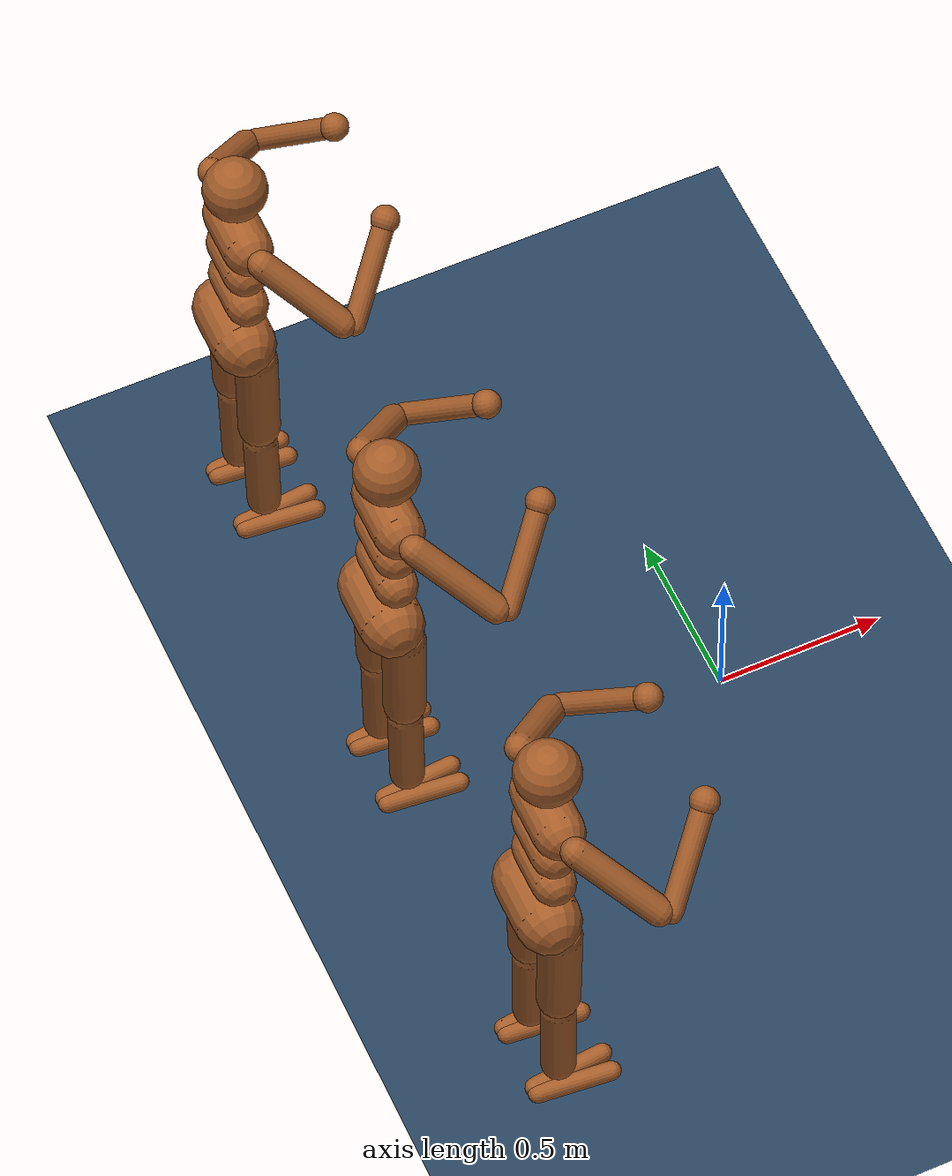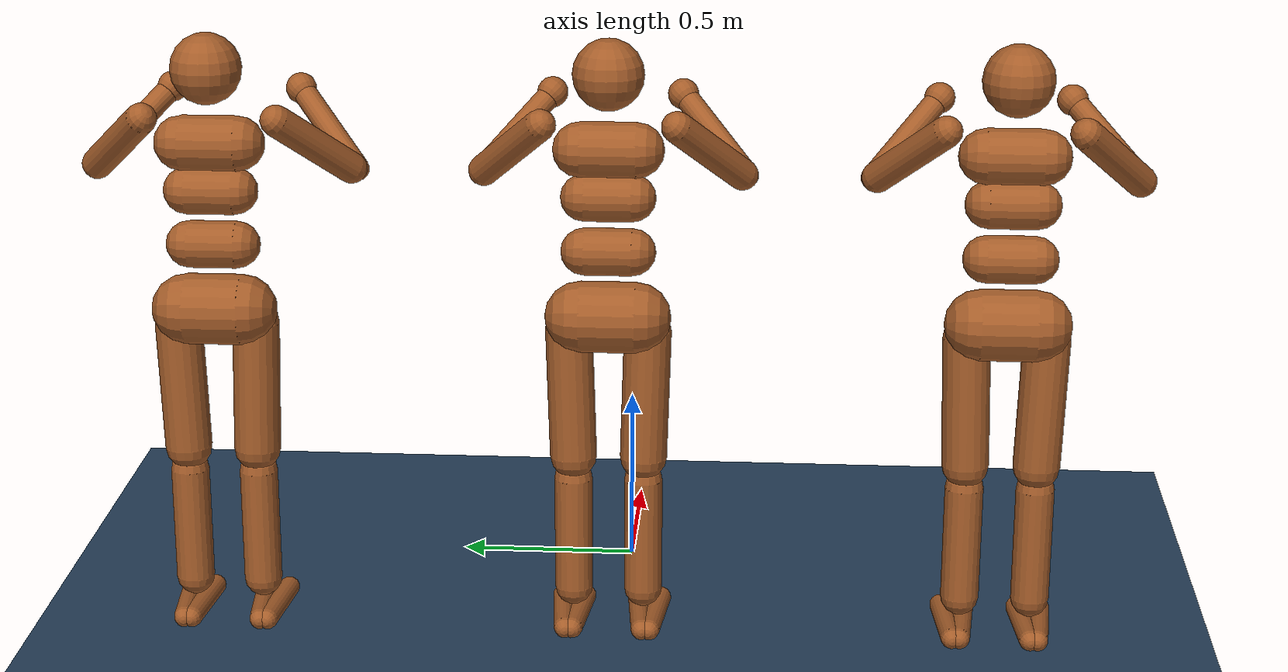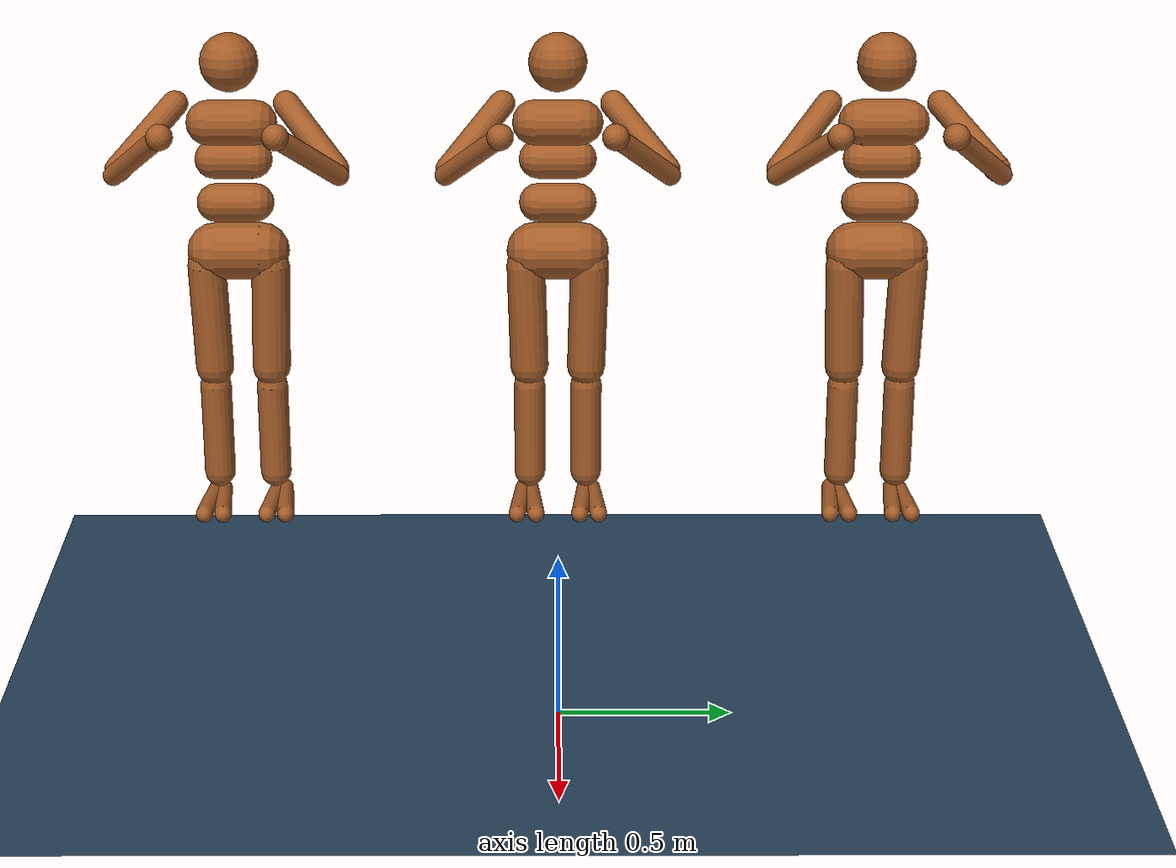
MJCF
<mujoco model="03 Humanoids">
  <compiler meshdir="F:/--CodeRepo/--CodeRepo/Research/___Mujoco/mujoco/mujoco/icse27/mujoco_rl_fuzz_2.0/.cache/repos/mjx/mjx/mujoco/mjx/test_data/humanoid" texturedir="F:/--CodeRepo/--CodeRepo/Research/___Mujoco/mujoco/mujoco/icse27/mujoco_rl_fuzz_2.0/.cache/repos/mjx/mjx/mujoco/mjx/test_data/humanoid" assetdir="F:/--CodeRepo/--CodeRepo/Research/___Mujoco/mujoco/mujoco/icse27/mujoco_rl_fuzz_2.0/.cache/repos/mjx/mjx/mujoco/mjx/test_data/humanoid"/><option timestep="0.005" solver="Newton" iterations="1" ls_iterations="4">
    <flag eulerdamp="disable"/>
  </option>

  <custom>
    <numeric data="12" name="max_contact_points"/>
    <numeric data="12" name="max_geom_pairs"/>
  </custom>

  <size memory="100M"/>

  <asset>
    <texture type="skybox" builtin="gradient" rgb1=".3 .5 .7" rgb2="0 0 0" width="512" height="512"/>
    <texture name="body" type="cube" builtin="flat" mark="cross" width="128" height="128" rgb1="0.8 0.6 0.4" rgb2="0.8 0.6 0.4" markrgb="1 1 1" random="0.01"/>
    <material name="body" texture="body" texuniform="true" rgba="0.8 0.6 .4 1"/>
    <texture name="grid" type="2d" builtin="checker" width="512" height="512" rgb1=".1 .2 .3" rgb2=".2 .3 .4"/>
    <material name="grid" texture="grid" texrepeat="1 1" texuniform="true" reflectance=".2"/>
  </asset>

  <default>
    <motor ctrlrange="-1 1" ctrllimited="true"/>
    <joint type="hinge" damping=".2" stiffness="1" armature=".01" limited="true" solimplimit="0 .99 .01"/>
    <default class="big_joint">
      <joint damping="5" stiffness="10"/>
      <default class="big_stiff_joint">
        <joint stiffness="20"/>
      </default>
    </default>
    <default class="body1">
      <geom type="capsule" condim="3" friction=".7" solimp=".9 .99 .003" solref=".015 1" material="body" contype="2" conaffinity="13"/>
    </default>
    <default class="body2">
      <geom type="capsule" condim="3" friction=".7" solimp=".9 .99 .003" solref=".015 1" material="body" contype="4" conaffinity="11"/>
    </default>
    <default class="body3">
      <geom type="capsule" condim="3" friction=".7" solimp=".9 .99 .003" solref=".015 1" material="body" contype="8" conaffinity="7"/>
    </default>
  </default>

  <visual>
    <map force="0.1" zfar="30"/>
    <rgba haze="0.15 0.25 0.35 1"/>
    <quality shadowsize="4096"/>
    <global offwidth="800" offheight="800"/>
  </visual>

  <worldbody>
    <geom size="10 10 .05" type="plane" material="grid" condim="3"/>
    <light dir=".2 1 -.4" diffuse=".8 .8 .8" specular="0.3 0.3 0.3" pos="-2 -10 4" cutoff="35"/>
    <light dir="-.2 1 -.4" diffuse=".8 .8 .8" specular="0.3 0.3 0.3" pos="2 -10 4" cutoff="35"/>

    <body name="1a_torso" pos="-1 0 1.5" childclass="body1">
      <camera name="1a_back" pos="-3 0 1" xyaxes="0 -1 0 1 0 2" mode="trackcom"/>
      <camera name="1a_side" pos="0 -3 1" xyaxes="1 0 0 0 1 2" mode="trackcom"/>
      <freejoint name="1a_root"/>
      <geom name="1a_torso" fromto="0 -.07 0 0 .07 0" size=".07"/>
      <geom name="1a_upper_waist" fromto="-.01 -.06 -.12 -.01 .06 -.12" size=".06"/>
      <body name="1a_head" pos="0 0 .19">
        <geom name="1a_head" type="sphere" size=".09"/>
        <camera name="1a_egocentric" pos=".09 0 0" xyaxes="0 -1 0 .1 0 1" fovy="80"/>
      </body>
      <body name="1a_lower_waist" pos="-.01 0 -.26">
        <geom name="1a_lower_waist" fromto="0 -.06 0 0 .06 0" size=".06"/>
        <joint name="1a_abdomen_z" pos="0 0 .065" axis="0 0 1" range="-45 45" class="big_stiff_joint"/>
        <joint name="1a_abdomen_y" pos="0 0 .065" axis="0 1 0" range="-75 30" class="big_joint"/>
        <body name="1a_pelvis" pos="0 0 -.165">
          <joint name="1a_abdomen_x" pos="0 0 .1" axis="1 0 0" range="-35 35" class="big_joint"/>
          <geom name="1a_butt" fromto="-.02 -.07 0 -.02 .07 0" size=".09"/>
          <body name="1a_right_thigh" pos="0 -.1 -.04">
            <joint name="1a_right_hip_x" axis="1 0 0" range="-25 5" class="big_joint"/>
            <joint name="1a_right_hip_z" axis="0 0 1" range="-60 35" class="big_joint"/>
            <joint name="1a_right_hip_y" axis="0 1 0" range="-110 20" class="big_stiff_joint"/>
            <geom name="1a_right_thigh" fromto="0 0 0 0 .01 -.34" size=".06"/>
            <body name="1a_right_shin" pos="0 .01 -.403">
              <joint name="1a_right_knee" pos="0 0 .02" axis="0 -1 0" range="-160 2"/>
              <geom name="1a_right_shin" fromto="0 0 0 0 0 -.3" size=".049"/>
              <body name="1a_right_foot" pos="0 0 -.39">
                <joint name="1a_right_ankle_y" pos="0 0 .08" axis="0 1 0" range="-50 50" stiffness="6"/>
                <joint name="1a_right_ankle_x" pos="0 0 .04" axis="1 0 .5" range="-50 50" stiffness="3"/>
                <geom name="1a_right_right_foot" fromto="-.07 -.02 0 .14 -.04 0" size=".027"/>
                <geom name="1a_left_right_foot" fromto="-.07 0 0 .14  .02 0" size=".027"/>
              </body>
            </body>
          </body>
          <body name="1a_left_thigh" pos="0 .1 -.04">
            <joint name="1a_left_hip_x" axis="-1 0 0" range="-25 5" class="big_joint"/>
            <joint name="1a_left_hip_z" axis="0 0 -1" range="-60 35" class="big_joint"/>
            <joint name="1a_left_hip_y" axis="0 1 0" range="-110 20" class="big_stiff_joint"/>
            <geom name="1a_left_thigh" fromto="0 0 0 0 -.01 -.34" size=".06"/>
            <body name="1a_left_shin" pos="0 -.01 -.403">
              <joint name="1a_left_knee" pos="0 0 .02" axis="0 -1 0" range="-160 2"/>
              <geom name="1a_left_shin" fromto="0 0 0 0 0 -.3" size=".049"/>
              <body name="1a_left_foot" pos="0 0 -.39">
                <joint name="1a_left_ankle_y" pos="0 0 .08" axis="0 1 0" range="-50 50" stiffness="6"/>
                <joint name="1a_left_ankle_x" pos="0 0 .04" axis="1 0 .5" range="-50 50" stiffness="3"/>
                <geom name="1a_left_left_foot" fromto="-.07 .02 0 .14 .04 0" size=".027"/>
                <geom name="1a_right_left_foot" fromto="-.07 0 0 .14 -.02 0" size=".027"/>
              </body>
            </body>
          </body>
        </body>
      </body>
      <body name="1a_right_upper_arm" pos="0 -.17 .06">
        <joint name="1a_right_shoulder1" axis="2 1 1" range="-85 60"/>
        <joint name="1a_right_shoulder2" axis="0 -1 1" range="-85 60"/>
        <geom name="1a_right_upper_arm" fromto="0 0 0 .16 -.16 -.16" size=".04 .16"/>
        <body name="1a_right_lower_arm" pos=".18 -.18 -.18">
          <joint name="1a_right_elbow" axis="0 -1 1" range="-90 50" stiffness="0"/>
          <geom name="1a_right_lower_arm" fromto=".01 .01 .01 .17 .17 .17" size=".031"/>
          <body name="1a_right_hand" pos=".18 .18 .18">
            <geom name="1a_right_hand" type="sphere" size=".04" zaxis="1 1 1"/>
          </body>
        </body>
      </body>
      <body name="1a_left_upper_arm" pos="0 .17 .06">
        <joint name="1a_left_shoulder1" axis="2 -1 1" range="-60 85"/>
        <joint name="1a_left_shoulder2" axis="0 1 1" range="-60 85"/>
        <geom name="1a_left_upper_arm" fromto="0 0 0 .16 .16 -.16" size=".04 .16"/>
        <body name="1a_left_lower_arm" pos=".18 .18 -.18">
          <joint name="1a_left_elbow" axis="0 -1 -1" range="-90 50" stiffness="0"/>
          <geom name="1a_left_lower_arm" fromto=".01 -.01 .01 .17 -.17 .17" size=".031"/>
          <body name="1a_left_hand" pos=".18 -.18 .18">
            <geom name="1a_left_hand" type="sphere" size=".04" zaxis="1 -1 1"/>
          </body>
        </body>
      </body>
    </body>

    <body name="2a_torso" pos="-1 1 1.5" childclass="body2">
      <camera name="2a_back" pos="-3 0 1" xyaxes="0 -1 0 1 0 2" mode="trackcom"/>
      <camera name="2a_side" pos="0 -3 1" xyaxes="1 0 0 0 1 2" mode="trackcom"/>
      <freejoint name="2a_root"/>
      <geom name="2a_torso" fromto="0 -.07 0 0 .07 0" size=".07"/>
      <geom name="2a_upper_waist" fromto="-.01 -.06 -.12 -.01 .06 -.12" size=".06"/>
      <body name="2a_head" pos="0 0 .19">
        <geom name="2a_head" type="sphere" size=".09"/>
        <camera name="2a_egocentric" pos=".09 0 0" xyaxes="0 -1 0 .1 0 1" fovy="80"/>
      </body>
      <body name="2a_lower_waist" pos="-.01 0 -.26">
        <geom name="2a_lower_waist" fromto="0 -.06 0 0 .06 0" size=".06"/>
        <joint name="2a_abdomen_z" pos="0 0 .065" axis="0 0 1" range="-45 45" class="big_stiff_joint"/>
        <joint name="2a_abdomen_y" pos="0 0 .065" axis="0 1 0" range="-75 30" class="big_joint"/>
        <body name="2a_pelvis" pos="0 0 -.165">
          <joint name="2a_abdomen_x" pos="0 0 .1" axis="1 0 0" range="-35 35" class="big_joint"/>
          <geom name="2a_butt" fromto="-.02 -.07 0 -.02 .07 0" size=".09"/>
          <body name="2a_right_thigh" pos="0 -.1 -.04">
            <joint name="2a_right_hip_x" axis="1 0 0" range="-25 5" class="big_joint"/>
            <joint name="2a_right_hip_z" axis="0 0 1" range="-60 35" class="big_joint"/>
            <joint name="2a_right_hip_y" axis="0 1 0" range="-110 20" class="big_stiff_joint"/>
            <geom name="2a_right_thigh" fromto="0 0 0 0 .01 -.34" size=".06"/>
            <body name="2a_right_shin" pos="0 .01 -.403">
              <joint name="2a_right_knee" pos="0 0 .02" axis="0 -1 0" range="-160 2"/>
              <geom name="2a_right_shin" fromto="0 0 0 0 0 -.3" size=".049"/>
              <body name="2a_right_foot" pos="0 0 -.39">
                <joint name="2a_right_ankle_y" pos="0 0 .08" axis="0 1 0" range="-50 50" stiffness="6"/>
                <joint name="2a_right_ankle_x" pos="0 0 .04" axis="1 0 .5" range="-50 50" stiffness="3"/>
                <geom name="2a_right_right_foot" fromto="-.07 -.02 0 .14 -.04 0" size=".027"/>
                <geom name="2a_left_right_foot" fromto="-.07 0 0 .14  .02 0" size=".027"/>
              </body>
            </body>
          </body>
          <body name="2a_left_thigh" pos="0 .1 -.04">
            <joint name="2a_left_hip_x" axis="-1 0 0" range="-25 5" class="big_joint"/>
            <joint name="2a_left_hip_z" axis="0 0 -1" range="-60 35" class="big_joint"/>
            <joint name="2a_left_hip_y" axis="0 1 0" range="-110 20" class="big_stiff_joint"/>
            <geom name="2a_left_thigh" fromto="0 0 0 0 -.01 -.34" size=".06"/>
            <body name="2a_left_shin" pos="0 -.01 -.403">
              <joint name="2a_left_knee" pos="0 0 .02" axis="0 -1 0" range="-160 2"/>
              <geom name="2a_left_shin" fromto="0 0 0 0 0 -.3" size=".049"/>
              <body name="2a_left_foot" pos="0 0 -.39">
                <joint name="2a_left_ankle_y" pos="0 0 .08" axis="0 1 0" range="-50 50" stiffness="6"/>
                <joint name="2a_left_ankle_x" pos="0 0 .04" axis="1 0 .5" range="-50 50" stiffness="3"/>
                <geom name="2a_left_left_foot" fromto="-.07 .02 0 .14 .04 0" size=".027"/>
                <geom name="2a_right_left_foot" fromto="-.07 0 0 .14 -.02 0" size=".027"/>
              </body>
            </body>
          </body>
        </body>
      </body>
      <body name="2a_right_upper_arm" pos="0 -.17 .06">
        <joint name="2a_right_shoulder1" axis="2 1 1" range="-85 60"/>
        <joint name="2a_right_shoulder2" axis="0 -1 1" range="-85 60"/>
        <geom name="2a_right_upper_arm" fromto="0 0 0 .16 -.16 -.16" size=".04 .16"/>
        <body name="2a_right_lower_arm" pos=".18 -.18 -.18">
          <joint name="2a_right_elbow" axis="0 -1 1" range="-90 50" stiffness="0"/>
          <geom name="2a_right_lower_arm" fromto=".01 .01 .01 .17 .17 .17" size=".031"/>
          <body name="2a_right_hand" pos=".18 .18 .18">
            <geom name="2a_right_hand" type="sphere" size=".04" zaxis="1 1 1"/>
          </body>
        </body>
      </body>
      <body name="2a_left_upper_arm" pos="0 .17 .06">
        <joint name="2a_left_shoulder1" axis="2 -1 1" range="-60 85"/>
        <joint name="2a_left_shoulder2" axis="0 1 1" range="-60 85"/>
        <geom name="2a_left_upper_arm" fromto="0 0 0 .16 .16 -.16" size=".04 .16"/>
        <body name="2a_left_lower_arm" pos=".18 .18 -.18">
          <joint name="2a_left_elbow" axis="0 -1 -1" range="-90 50" stiffness="0"/>
          <geom name="2a_left_lower_arm" fromto=".01 -.01 .01 .17 -.17 .17" size=".031"/>
          <body name="2a_left_hand" pos=".18 -.18 .18">
            <geom name="2a_left_hand" type="sphere" size=".04" zaxis="1 -1 1"/>
          </body>
        </body>
      </body>
    </body>

    <body name="3a_torso" pos="-1 -1 1.5" childclass="body3">
      <camera name="3a_back" pos="-3 0 1" xyaxes="0 -1 0 1 0 2" mode="trackcom"/>
      <camera name="3a_side" pos="0 -3 1" xyaxes="1 0 0 0 1 2" mode="trackcom"/>
      <freejoint name="3a_root"/>
      <geom name="3a_torso" fromto="0 -.07 0 0 .07 0" size=".07"/>
      <geom name="3a_upper_waist" fromto="-.01 -.06 -.12 -.01 .06 -.12" size=".06"/>
      <body name="3a_head" pos="0 0 .19">
        <geom name="3a_head" type="sphere" size=".09"/>
        <camera name="3a_egocentric" pos=".09 0 0" xyaxes="0 -1 0 .1 0 1" fovy="80"/>
      </body>
      <body name="3a_lower_waist" pos="-.01 0 -.26">
        <geom name="3a_lower_waist" fromto="0 -.06 0 0 .06 0" size=".06"/>
        <joint name="3a_abdomen_z" pos="0 0 .065" axis="0 0 1" range="-45 45" class="big_stiff_joint"/>
        <joint name="3a_abdomen_y" pos="0 0 .065" axis="0 1 0" range="-75 30" class="big_joint"/>
        <body name="3a_pelvis" pos="0 0 -.165">
          <joint name="3a_abdomen_x" pos="0 0 .1" axis="1 0 0" range="-35 35" class="big_joint"/>
          <geom name="3a_butt" fromto="-.02 -.07 0 -.02 .07 0" size=".09"/>
          <body name="3a_right_thigh" pos="0 -.1 -.04">
            <joint name="3a_right_hip_x" axis="1 0 0" range="-25 5" class="big_joint"/>
            <joint name="3a_right_hip_z" axis="0 0 1" range="-60 35" class="big_joint"/>
            <joint name="3a_right_hip_y" axis="0 1 0" range="-110 20" class="big_stiff_joint"/>
            <geom name="3a_right_thigh" fromto="0 0 0 0 .01 -.34" size=".06"/>
            <body name="3a_right_shin" pos="0 .01 -.403">
              <joint name="3a_right_knee" pos="0 0 .02" axis="0 -1 0" range="-160 2"/>
              <geom name="3a_right_shin" fromto="0 0 0 0 0 -.3" size=".049"/>
              <body name="3a_right_foot" pos="0 0 -.39">
                <joint name="3a_right_ankle_y" pos="0 0 .08" axis="0 1 0" range="-50 50" stiffness="6"/>
                <joint name="3a_right_ankle_x" pos="0 0 .04" axis="1 0 .5" range="-50 50" stiffness="3"/>
                <geom name="3a_right_right_foot" fromto="-.07 -.02 0 .14 -.04 0" size=".027"/>
                <geom name="3a_left_right_foot" fromto="-.07 0 0 .14  .02 0" size=".027"/>
              </body>
            </body>
          </body>
          <body name="3a_left_thigh" pos="0 .1 -.04">
            <joint name="3a_left_hip_x" axis="-1 0 0" range="-25 5" class="big_joint"/>
            <joint name="3a_left_hip_z" axis="0 0 -1" range="-60 35" class="big_joint"/>
            <joint name="3a_left_hip_y" axis="0 1 0" range="-110 20" class="big_stiff_joint"/>
            <geom name="3a_left_thigh" fromto="0 0 0 0 -.01 -.34" size=".06"/>
            <body name="3a_left_shin" pos="0 -.01 -.403">
              <joint name="3a_left_knee" pos="0 0 .02" axis="0 -1 0" range="-160 2"/>
              <geom name="3a_left_shin" fromto="0 0 0 0 0 -.3" size=".049"/>
              <body name="3a_left_foot" pos="0 0 -.39">
                <joint name="3a_left_ankle_y" pos="0 0 .08" axis="0 1 0" range="-50 50" stiffness="6"/>
                <joint name="3a_left_ankle_x" pos="0 0 .04" axis="1 0 .5" range="-50 50" stiffness="3"/>
                <geom name="3a_left_left_foot" fromto="-.07 .02 0 .14 .04 0" size=".027"/>
                <geom name="3a_right_left_foot" fromto="-.07 0 0 .14 -.02 0" size=".027"/>
              </body>
            </body>
          </body>
        </body>
      </body>
      <body name="3a_right_upper_arm" pos="0 -.17 .06">
        <joint name="3a_right_shoulder1" axis="2 1 1" range="-85 60"/>
        <joint name="3a_right_shoulder2" axis="0 -1 1" range="-85 60"/>
        <geom name="3a_right_upper_arm" fromto="0 0 0 .16 -.16 -.16" size=".04 .16"/>
        <body name="3a_right_lower_arm" pos=".18 -.18 -.18">
          <joint name="3a_right_elbow" axis="0 -1 1" range="-90 50" stiffness="0"/>
          <geom name="3a_right_lower_arm" fromto=".01 .01 .01 .17 .17 .17" size=".031"/>
          <body name="3a_right_hand" pos=".18 .18 .18">
            <geom name="3a_right_hand" type="sphere" size=".04" zaxis="1 1 1"/>
          </body>
        </body>
      </body>
      <body name="3a_left_upper_arm" pos="0 .17 .06">
        <joint name="3a_left_shoulder1" axis="2 -1 1" range="-60 85"/>
        <joint name="3a_left_shoulder2" axis="0 1 1" range="-60 85"/>
        <geom name="3a_left_upper_arm" fromto="0 0 0 .16 .16 -.16" size=".04 .16"/>
        <body name="3a_left_lower_arm" pos=".18 .18 -.18">
          <joint name="3a_left_elbow" axis="0 -1 -1" range="-90 50" stiffness="0"/>
          <geom name="3a_left_lower_arm" fromto=".01 -.01 .01 .17 -.17 .17" size=".031"/>
          <body name="3a_left_hand" pos=".18 -.18 .18">
            <geom name="3a_left_hand" type="sphere" size=".04" zaxis="1 -1 1"/>
          </body>
        </body>
      </body>
    </body>

  </worldbody>

  <actuator>
    <motor gear="40" joint="1a_abdomen_y"/>
    <motor gear="40" joint="1a_abdomen_z"/>
    <motor gear="40" joint="1a_abdomen_x"/>
    <motor gear="40" joint="1a_right_hip_x"/>
    <motor gear="40" joint="1a_right_hip_z"/>
    <motor gear="120" joint="1a_right_hip_y"/>
    <motor gear="80" joint="1a_right_knee"/>
    <motor gear="20" joint="1a_right_ankle_x"/>
    <motor gear="20" joint="1a_right_ankle_y"/>
    <motor gear="40" joint="1a_left_hip_x"/>
    <motor gear="40" joint="1a_left_hip_z"/>
    <motor gear="120" joint="1a_left_hip_y"/>
    <motor gear="80" joint="1a_left_knee"/>
    <motor gear="20" joint="1a_left_ankle_x"/>
    <motor gear="20" joint="1a_left_ankle_y"/>
    <motor gear="20" joint="1a_right_shoulder1"/>
    <motor gear="20" joint="1a_right_shoulder2"/>
    <motor gear="40" joint="1a_right_elbow"/>
    <motor gear="20" joint="1a_left_shoulder1"/>
    <motor gear="20" joint="1a_left_shoulder2"/>
    <motor gear="40" joint="1a_left_elbow"/>
  </actuator>

  <actuator>
    <motor gear="40" joint="2a_abdomen_y"/>
    <motor gear="40" joint="2a_abdomen_z"/>
    <motor gear="40" joint="2a_abdomen_x"/>
    <motor gear="40" joint="2a_right_hip_x"/>
    <motor gear="40" joint="2a_right_hip_z"/>
    <motor gear="120" joint="2a_right_hip_y"/>
    <motor gear="80" joint="2a_right_knee"/>
    <motor gear="20" joint="2a_right_ankle_x"/>
    <motor gear="20" joint="2a_right_ankle_y"/>
    <motor gear="40" joint="2a_left_hip_x"/>
    <motor gear="40" joint="2a_left_hip_z"/>
    <motor gear="120" joint="2a_left_hip_y"/>
    <motor gear="80" joint="2a_left_knee"/>
    <motor gear="20" joint="2a_left_ankle_x"/>
    <motor gear="20" joint="2a_left_ankle_y"/>
    <motor gear="20" joint="2a_right_shoulder1"/>
    <motor gear="20" joint="2a_right_shoulder2"/>
    <motor gear="40" joint="2a_right_elbow"/>
    <motor gear="20" joint="2a_left_shoulder1"/>
    <motor gear="20" joint="2a_left_shoulder2"/>
    <motor gear="40" joint="2a_left_elbow"/>
  </actuator>

  <actuator>
    <motor gear="40" joint="3a_abdomen_y"/>
    <motor gear="40" joint="3a_abdomen_z"/>
    <motor gear="40" joint="3a_abdomen_x"/>
    <motor gear="40" joint="3a_right_hip_x"/>
    <motor gear="40" joint="3a_right_hip_z"/>
    <motor gear="120" joint="3a_right_hip_y"/>
    <motor gear="80" joint="3a_right_knee"/>
    <motor gear="20" joint="3a_right_ankle_x"/>
    <motor gear="20" joint="3a_right_ankle_y"/>
    <motor gear="40" joint="3a_left_hip_x"/>
    <motor gear="40" joint="3a_left_hip_z"/>
    <motor gear="120" joint="3a_left_hip_y"/>
    <motor gear="80" joint="3a_left_knee"/>
    <motor gear="20" joint="3a_left_ankle_x"/>
    <motor gear="20" joint="3a_left_ankle_y"/>
    <motor gear="20" joint="3a_right_shoulder1"/>
    <motor gear="20" joint="3a_right_shoulder2"/>
    <motor gear="40" joint="3a_right_elbow"/>
    <motor gear="20" joint="3a_left_shoulder1"/>
    <motor gear="20" joint="3a_left_shoulder2"/>
    <motor gear="40" joint="3a_left_elbow"/>
  </actuator>

</mujoco>
